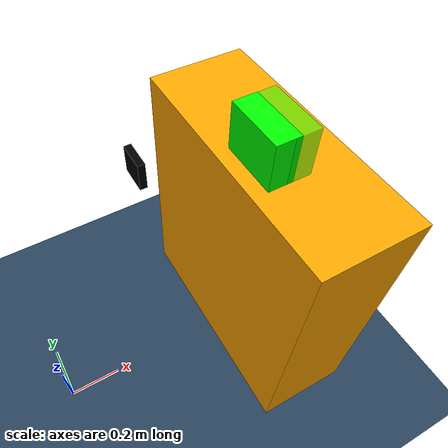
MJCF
<mujoco model="RobotPush1">
<!-- Pushing one object from start to goal -->
  <include file="point_push.xml"/>
  <include file="obj_setup1.xml"/>

  <custom>
    <!-- agent -->
    <numeric name="agent_planner" data="2" />
    <numeric name="agent_horizon" data="10" />
    <numeric name="agent_timestep" data="0.002" />
    <numeric name="agent_integrator" data="2" />
    <numeric name="agent_policy_width" data="0.0015" />
    <numeric name="sampling_spline_points" data="15" />
    <numeric name="sampling_exploration" data="0.01" />
    <numeric name="sampling_trajectories" data="10" />
    <numeric name="gradient_spline_points" data="15" />
    <numeric name="disturbance_sampling_scale" data="0.02" />

    <!-- estimator -->
    <numeric name="estimator" data="0" />
    <numeric name="estimator_sensor_start" data="2" />
    <numeric name="estimator_number_sensor" data="8" />
    <numeric name="estimator_timestep" data="0.0075" />
    <numeric name="batch_configuration_length" data="3" />
    <numeric name="batch_scale_prior" data="1.0e-3" />
  </custom>

  <statistic extent="1.5" center="0.1 0.2 0.3"/>

  <sensor>
    <!-- Residual 0-2: distance from robot hand to the object -->

    <user name="error robot position" dim="3"/>
    <user name="error object0 position" dim="3"/>
    <user name="error object0 orientation" dim="3"/>

  </sensor>

</mujoco>

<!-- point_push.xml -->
<mujoco model="scene1">
  <compiler angle="radian" balanceinertia="true" inertiafromgeom="true"
    meshdir="/home/yinglong/Documents/research/task_motion_planning/infrastructure/motoman_ws/src/pracsys_vbnpm/"
    texturedir="/home/yinglong/Documents/research/task_motion_planning/infrastructure/motoman_ws/src/pracsys_vbnpm/"
    autolimits="true"/>

  <asset>
    <texture builtin="checker" height="512" name="grid" rgb1="0.1 0.2 0.3" rgb2="0.2 0.3 0.4" type="2d" width="512"/>
    <material name="grid" emission="1" reflectance="0" shininess="0" specular="0" texrepeat="0.5 0.5" texture="grid" texuniform="true"/>
    <mesh file="/home/yinglong/Documents/research/task_motion_planning/infrastructure/motoman_ws/src/pracsys_vbnpm/data/models/objects/ocrtoc/a_cups/collision_meshes/collision/collision.obj" name="a_cups_col" scale="1 1 1"/>
    <mesh file="/home/yinglong/Documents/research/task_motion_planning/infrastructure/motoman_ws/src/pracsys_vbnpm/data/models/objects/ocrtoc/a_cups/meshes/visual/visual.obj" name="a_cups_vis" scale="1 1 1"/>
    <texture file="/home/yinglong/Documents/research/task_motion_planning/infrastructure/motoman_ws/src/pracsys_vbnpm/data/models/objects/ocrtoc/a_cups/meshes/visual/texture_map.png" name="a_cups_vis" type="2d"/>
    <material name="a_cups_vis" texture="a_cups_vis"/>
    <mesh file="/home/yinglong/Documents/research/task_motion_planning/infrastructure/motoman_ws/src/pracsys_vbnpm/data/models/objects/ocrtoc/b_cups/collision_meshes/collision/collision.obj" name="b_cups_col" scale="1 1 1"/>
    <mesh file="/home/yinglong/Documents/research/task_motion_planning/infrastructure/motoman_ws/src/pracsys_vbnpm/data/models/objects/ocrtoc/b_cups/meshes/visual/visual.obj" name="b_cups_vis" scale="1 1 1"/>
    <texture file="/home/yinglong/Documents/research/task_motion_planning/infrastructure/motoman_ws/src/pracsys_vbnpm/data/models/objects/ocrtoc/b_cups/meshes/visual/texture_map.png" name="b_cups_vis" type="2d"/>
    <material name="b_cups_vis" texture="b_cups_vis"/>
    <mesh file="/home/yinglong/Documents/research/task_motion_planning/infrastructure/motoman_ws/src/pracsys_vbnpm/data/models/objects/ocrtoc/a_toy_airplane/collision_meshes/collision/collision.obj" name="a_toy_airplane_col" scale="1 1 1"/>
    <mesh file="/home/yinglong/Documents/research/task_motion_planning/infrastructure/motoman_ws/src/pracsys_vbnpm/data/models/objects/ocrtoc/a_toy_airplane/meshes/visual/visual.obj" name="a_toy_airplane_vis" scale="1 1 1"/>
    <texture file="/home/yinglong/Documents/research/task_motion_planning/infrastructure/motoman_ws/src/pracsys_vbnpm/data/models/objects/ocrtoc/a_toy_airplane/meshes/visual/texture_map.png" name="a_toy_airplane_vis" type="2d"/>
    <material name="a_toy_airplane_vis" texture="a_toy_airplane_vis"/>
    <mesh file="/home/yinglong/Documents/research/task_motion_planning/infrastructure/motoman_ws/src/pracsys_vbnpm/data/models/objects/ocrtoc/cracker_box/collision_meshes/collision/collision.obj" name="cracker_box_col" scale="1 1 1"/>
    <mesh file="/home/yinglong/Documents/research/task_motion_planning/infrastructure/motoman_ws/src/pracsys_vbnpm/data/models/objects/ocrtoc/cracker_box/meshes/visual/visual.obj" name="cracker_box_vis" scale="1 1 1"/>
    <texture file="/home/yinglong/Documents/research/task_motion_planning/infrastructure/motoman_ws/src/pracsys_vbnpm/data/models/objects/ocrtoc/cracker_box/meshes/visual/texture_map.png" name="cracker_box_vis" type="2d"/>
    <material name="cracker_box_vis" texture="cracker_box_vis"/>
  </asset>
  <worldbody>
    <geom condim="3" material="grid" name="floor" size="2 2 0.05" type="plane"/>
    <geom conaffinity="0" contype="0" group="1" material="grid" name="floor_vis" size="2 2 0.05" type="plane"/>
    <light castshadow="false" diffuse="1 1 1" dir="0 0 -1" directional="true" pos="-0.5 0.5 3"/>
    <body name="workspace" pos="-0.1 0 0" quat="1 0 0 0">
      <geom name="shelf_bottom" pos="0.925 0 0.5" rgba="1.0 0.64 0.0 1.0" size="0.175 0.45 0.5" type="box" quat="1 0 0 0"/>
      <geom conaffinity="0" contype="0" group="1" name="shelf_bottom_vis" pos="0.925 0 0.5" rgba="1.0 0.64 0.0 1.0" size="0.175 0.45 0.5" type="box" quat="1 0 0 0"/>
    </body>
    <body mocap="true" name="body_cam" pos="0.4 0 1.1" xyaxes="0 -1 0 0 0 1">
        <camera fovy="50" name="cam"/>
        <geom conaffinity="2" contype="2" name="geom_cam" rgba="0 0 0 1" size="0.04 0.04 0.01" type="box"/>
    </body>

    <body name="ee_position" pos="0 0 0" gravcomp="1">
      <camera name="cam0" pos="0 -0.3 0.3" xyaxes="1 0 0 0 0.7 0.7"/>
      <joint name="ee_position_x" type="slide"  pos="0 0 0" axis="1 0 0" ref="0" />
      <joint name="ee_position_y" type="slide"  pos="0 0 0" axis="0 1 0" ref="0" />
      <joint name="ee_position_z" type="slide"  pos="0 0 0" axis="0 0 1" ref="0" />
      <geom name="ee_position" type="sphere" size=".005" mass="1.0"/>
      <site name="tip" pos="0 0 0" size="0.001"/>
    </body>
  </worldbody>

  <actuator>

    <velocity name="ee_position_x_vel" joint="ee_position_x" kv="1000" ctrllimited="true" ctrlrange="-0.3 0.3"/>
    <velocity name="ee_position_y_vel" joint="ee_position_y" kv="1000" ctrllimited="true" ctrlrange="-0.3 0.3"/>
    <velocity name="ee_position_z_vel" joint="ee_position_z" kv="1000" ctrllimited="true" ctrlrange="-0.3 0.3"/>

    <!-- delta position by general -->

    <position name="ee_position_x_pos" joint="ee_position_x" kp="1000" ctrllimited="true" ctrlrange="0 1"/>
    <position name="ee_position_y_pos" joint="ee_position_y" kp="1000" ctrllimited="true" ctrlrange="-1 1"/>
    <position name="ee_position_z_pos" joint="ee_position_z" kp="1000" ctrllimited="true" ctrlrange="-0.1 2"/>

  </actuator>
</mujoco>

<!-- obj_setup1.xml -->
<mujoco model="obj_setup">
  <worldbody>
    <body name="object_0" pos="0.7399660902822591 -0.05971188968363312 1.08" quat="0.9999876884441344 -0.003640889346286578 -0.003226259955834315 0.000978841980307978">
    <geom type="box" name='object_geom' size="0.04 0.1 0.08" rgba="0 1 0 1"/>
    <joint name="object_0_joint" type="free"/>
    </body>

    <body name="goal" mocap="true" pos="0.7999660902822591 -0.05971188968363312 1.08" quat="0.9999876884441344 -0.003640889346286578 -0.003226259955834315 0.000978841980307978">
      <geom type="box" name='goal_geom' conaffinity="0" contype="0" size="0.04 0.1 0.08" rgba="0 1 0 .5"/>
    </body>

  </worldbody>
</mujoco>
